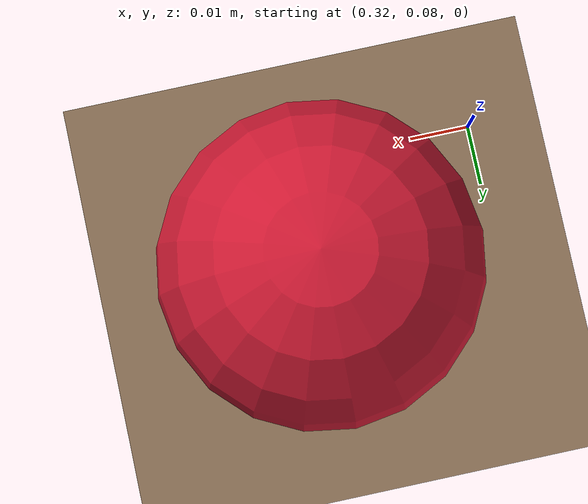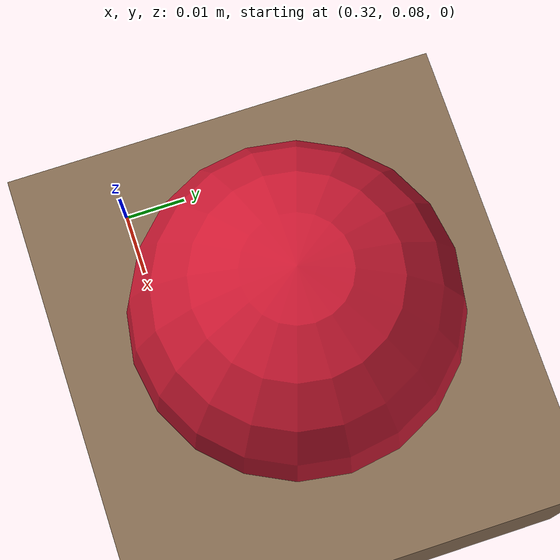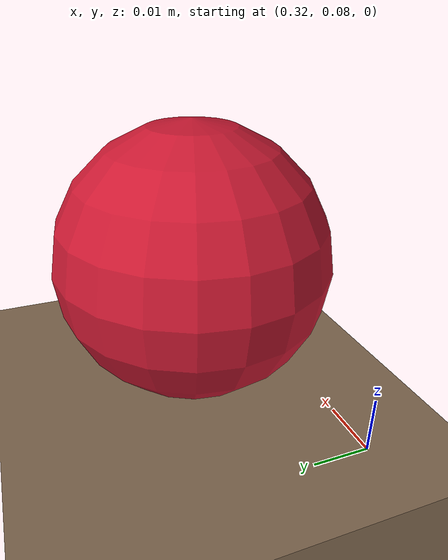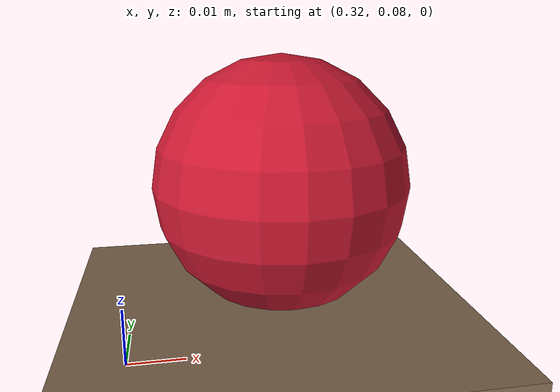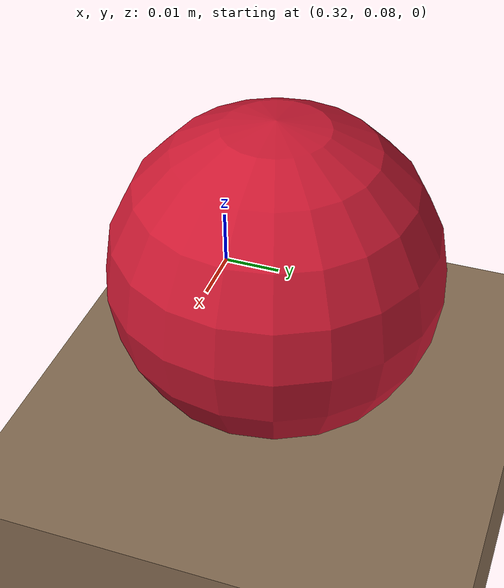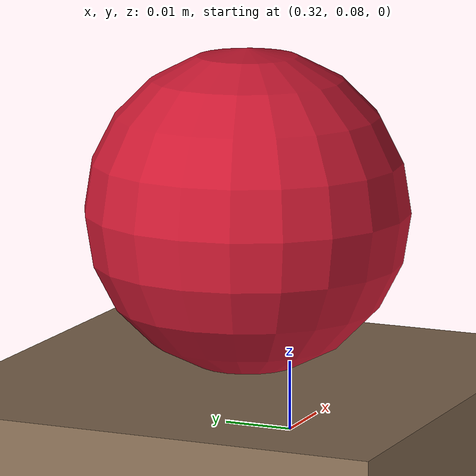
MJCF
<mujoco model="berrypicker wxai">
  <option integrator="implicitfast"/>

  <visual>
    <headlight diffuse="0.6 0.6 0.6" ambient="0.3 0.3 0.3" specular="0 0 0"/>
    <global azimuth="160" elevation="-20" offwidth="1280" offheight="960"/>
  </visual>

  <asset>
    <texture type="2d" name="tabletop" builtin="checker" rgb1="0.55 0.45 0.35" rgb2="0.5 0.4 0.3"
      width="300" height="300"/>
    <material name="tabletop" texture="tabletop" texuniform="true" texrepeat="4 4"/>
  </asset>

  <worldbody>
    <light pos="0 0 1.5" dir="0 0 -1" directional="true"/>
    <geom name="table" type="box" size="0.6 0.6 0.02" pos="0.2 0 -0.02" material="tabletop"/>
    <body name="target" pos="0.35 0.1 0.025">
      <freejoint/>
      <geom name="target" type="sphere" size="0.025" rgba="0.8 0.1 0.2 1" mass="0.05"/>
    </body>
    <frame name="robot_mount" pos="0 0 0"/>
    <camera name="front" pos="1.2 0 0.7" xyaxes="0 1 0 -0.447 0 0.894" fovy="60"/>
    <camera name="side" pos="0.3 -1.2 0.7" xyaxes="1 0 0 0 0.351 0.936" fovy="60"/>
  </worldbody>
</mujoco>
